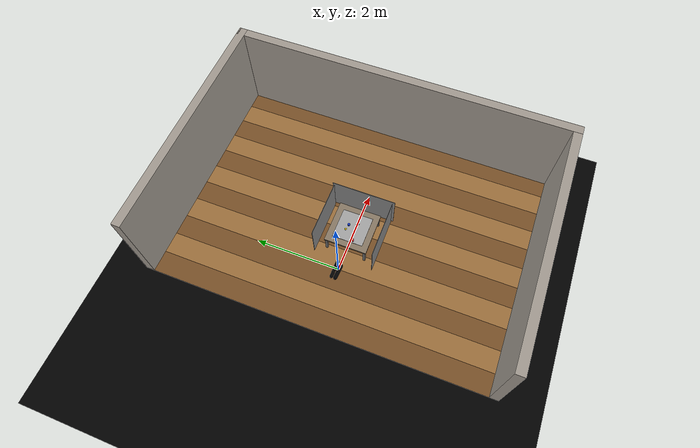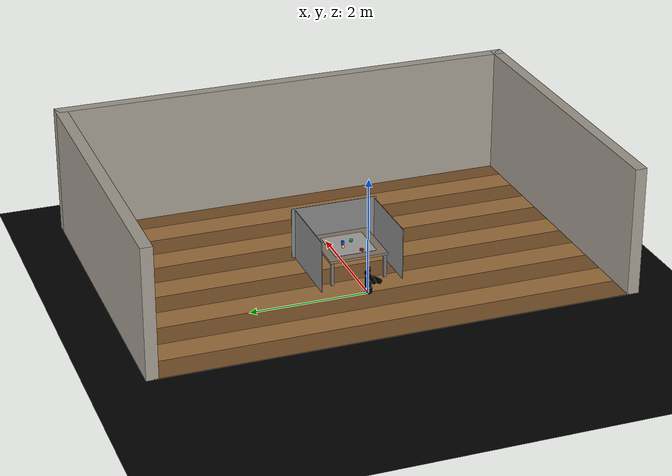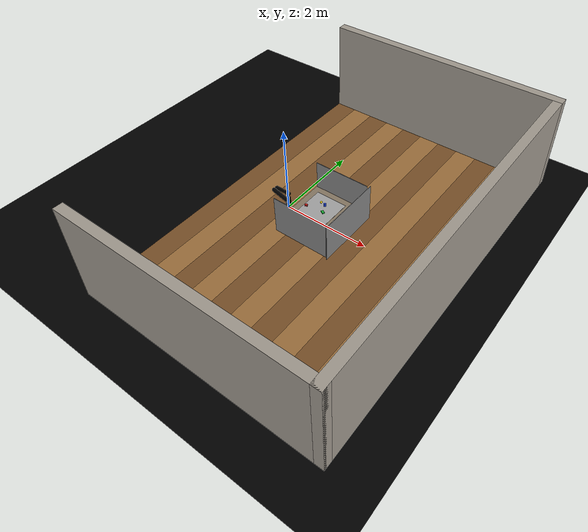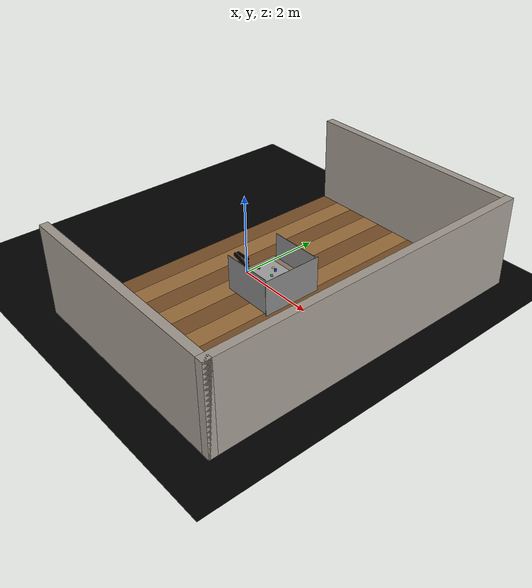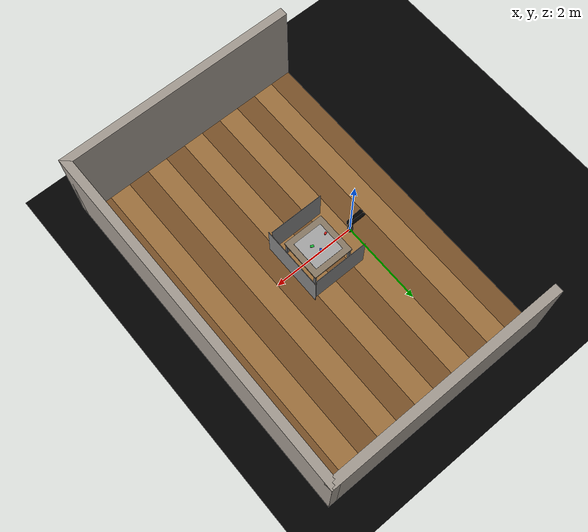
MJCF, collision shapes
<mujoco model="eMeetArm">
  <!-- eulerseq XYZ = intrinsic roll-pitch-yaw, matches URDF rpy convention -->
  <compiler meshdir="../../eMeetArm_models/meshes" eulerseq="XYZ" angle="radian"/>

  <option timestep="0.002" gravity="0 0 -9.81" integrator="implicitfast"/>

  <visual>
    <headlight diffuse="0.8 0.8 0.8" ambient="0.3 0.3 0.3" specular="0.0 0.0 0.0"/>
    <rgba haze="0.15 0.25 0.35 1"/>
  </visual>

  <asset>
    <mesh name="base_link" file="base_link.STL"/>
    <mesh name="Link1"     file="Link1.STL"/>
    <mesh name="Link2"     file="Link2.STL"/>
    <mesh name="Link3"     file="Link3.STL"/>
    <mesh name="Link4"     file="Link4.STL"/>
    <mesh name="Link5"     file="Link5.STL"/>
    <mesh name="Link6"     file="Link6.STL"/>
    <material name="arm_grey"   rgba="0.898 0.918 0.929 1"/>
    <material name="joint_grey" rgba="0.698 0.698 0.698 1"/>
  </asset>

  <default>
    <joint limited="true"/>
    <!-- visual: mesh rendering only, no physics collision -->
    <default class="visual">
      <geom contype="0" conaffinity="0" group="0"/>
    </default>
    <!-- robot_col: robot link collision shapes (contype=2), collide with world (conaffinity=1)
         but NOT with each other (world has conaffinity=2, robot has contype=2 → robot-robot: off) -->
    <default class="robot_col">
      <geom contype="2" conaffinity="1" group="3" rgba="0 0 0 0"/>
    </default>
    <!-- world_col: scene/object collision, collides with robot and other objects -->
    <default class="world_col">
      <geom contype="1" conaffinity="3" group="0"/>
    </default>
  </default>

  <worldbody>
    <!-- ── Lighting ────────────────────────────────────────────────────────── -->
    <light name="overhead" pos="0.75 0 3.0" dir="0 0 -1"
           diffuse="0.92 0.92 0.88" specular="0.3 0.3 0.3"/>
    <light name="side"     pos="1 1 1.5" dir="-1 -1 -1"
           diffuse="0.4 0.4 0.4"/>
    <light name="fill"     pos="-0.3 0.5 1.2"
           diffuse="0.55 0.55 0.60" specular="0.1 0.1 0.1"
           attenuation="0.3 0.1 0.01" cutoff="5"/>

    <!-- Ground collision plane (invisible) -->
    <geom name="ground_col" class="world_col" type="plane" size="5 5 0.1" rgba="0 0 0 0"/>

    <!-- ── Wood floor planks (alternating dark/light, visual only) ────────── -->
    <!-- 11 planks, 0.50×8.0m each, x=-1.25 to +3.75 -->
    <geom name="plank_d0" type="box" size="0.25 4.0 0.004"
          pos="-1.25 0 0.004" rgba="0.48 0.32 0.16 1" contype="0" conaffinity="0"/>
    <geom name="plank_l0" type="box" size="0.25 4.0 0.004"
          pos="-0.75 0 0.004" rgba="0.62 0.44 0.24 1" contype="0" conaffinity="0"/>
    <geom name="plank_d1" type="box" size="0.25 4.0 0.004"
          pos="-0.25 0 0.004" rgba="0.48 0.32 0.16 1" contype="0" conaffinity="0"/>
    <geom name="plank_l1" type="box" size="0.25 4.0 0.004"
          pos="0.25 0 0.004" rgba="0.62 0.44 0.24 1" contype="0" conaffinity="0"/>
    <geom name="plank_d2" type="box" size="0.25 4.0 0.004"
          pos="0.75 0 0.004" rgba="0.48 0.32 0.16 1" contype="0" conaffinity="0"/>
    <geom name="plank_l2" type="box" size="0.25 4.0 0.004"
          pos="1.25 0 0.004" rgba="0.62 0.44 0.24 1" contype="0" conaffinity="0"/>
    <geom name="plank_d3" type="box" size="0.25 4.0 0.004"
          pos="1.75 0 0.004" rgba="0.48 0.32 0.16 1" contype="0" conaffinity="0"/>
    <geom name="plank_l3" type="box" size="0.25 4.0 0.004"
          pos="2.25 0 0.004" rgba="0.62 0.44 0.24 1" contype="0" conaffinity="0"/>
    <geom name="plank_d4" type="box" size="0.25 4.0 0.004"
          pos="2.75 0 0.004" rgba="0.48 0.32 0.16 1" contype="0" conaffinity="0"/>
    <geom name="plank_l4" type="box" size="0.25 4.0 0.004"
          pos="3.25 0 0.004" rgba="0.62 0.44 0.24 1" contype="0" conaffinity="0"/>
    <geom name="plank_d5" type="box" size="0.25 4.0 0.004"
          pos="3.75 0 0.004" rgba="0.48 0.32 0.16 1" contype="0" conaffinity="0"/>

    <!-- ── Workbench (table) ──────────────────────────────────────────────── -->
    <body name="workbench" pos="0 0 0">
      <!-- Table surface: 1.00×1.00×0.04m, top at z=0.43 -->
      <geom name="table_top" class="world_col" type="box" size="0.50 0.50 0.02"
            pos="0.90 0 0.43" rgba="0.54 0.48 0.40 1"/>
      <geom name="leg_fl" class="world_col" type="box" size="0.025 0.025 0.205"
            pos="0.435 -0.455 0.205" rgba="0.45 0.45 0.45 1"/>
      <geom name="leg_fr" class="world_col" type="box" size="0.025 0.025 0.205"
            pos="0.435  0.455 0.205" rgba="0.45 0.45 0.45 1"/>
      <geom name="leg_bl" class="world_col" type="box" size="0.025 0.025 0.205"
            pos="1.365 -0.455 0.205" rgba="0.45 0.45 0.45 1"/>
      <geom name="leg_br" class="world_col" type="box" size="0.025 0.025 0.205"
            pos="1.365  0.455 0.205" rgba="0.45 0.45 0.45 1"/>
    </body>

    <!-- ── Inspection plate ───────────────────────────────────────────────── -->
    <geom name="plate" class="world_col" type="box" size="0.36 0.36 0.0025"
          pos="0.90 0 0.453" rgba="0.65 0.65 0.65 1"/>

    <!-- ── Cloth backdrops ────────────────────────────────────────────────── -->
    <geom name="cloth_back"  type="box" size="0.005 0.75 0.45"
          pos="1.60 0 0.45"    rgba="0.52 0.52 0.52 1" contype="0" conaffinity="0"/>
    <geom name="cloth_left"  type="box" size="0.65 0.005 0.45"
          pos="0.90 -0.70 0.45" rgba="0.52 0.52 0.52 1" contype="0" conaffinity="0"/>
    <geom name="cloth_right" type="box" size="0.65 0.005 0.45"
          pos="0.90  0.70 0.45" rgba="0.52 0.52 0.52 1" contype="0" conaffinity="0"/>

    <!-- ── Walls ──────────────────────────────────────────────────────────── -->
    <geom name="wall_back"  type="box" size="0.10 4.10 1.10"
          pos="4.00 0 1.10"    rgba="0.64 0.61 0.57 1" contype="0" conaffinity="0"/>
    <geom name="wall_left"  type="box" size="2.80 0.10 1.10"
          pos="1.30 -4.00 1.10" rgba="0.64 0.61 0.57 1" contype="0" conaffinity="0"/>
    <geom name="wall_right" type="box" size="2.80 0.10 1.10"
          pos="1.30  4.00 1.10" rgba="0.64 0.61 0.57 1" contype="0" conaffinity="0"/>

    <!-- ── Test objects (dynamic, can be manipulated) ─────────────────────── -->
    <body name="obj_red_box" pos="0.60 -0.12 0.47" euler="0 0 0.4">
      <inertial pos="0 0 0" mass="0.1" diaginertia="1e-4 1e-4 1e-4"/>
      <geom class="world_col" type="box" size="0.03 0.02 0.02" rgba="0.85 0.12 0.10 1"/>
      <freejoint/>
    </body>
    <body name="obj_blue_cyl" pos="0.92 0.10 0.485">
      <inertial pos="0 0 0" mass="0.15" diaginertia="1e-4 1e-4 5e-5"/>
      <geom class="world_col" type="cylinder" size="0.025 0.035" rgba="0.10 0.25 0.85 1"/>
      <freejoint/>
    </body>
    <body name="obj_green_box" pos="1.00 -0.08 0.4625" euler="0 0 -0.5">
      <inertial pos="0 0 0" mass="0.08" diaginertia="5e-5 5e-5 5e-5"/>
      <geom class="world_col" type="box" size="0.04 0.025 0.0125" rgba="0.10 0.72 0.22 1"/>
      <freejoint/>
    </body>
    <body name="obj_yellow_sphere" pos="0.80 0.13 0.475">
      <inertial pos="0 0 0" mass="0.05" diaginertia="2e-5 2e-5 2e-5"/>
      <geom class="world_col" type="sphere" size="0.025" rgba="0.95 0.82 0.05 1"/>
      <freejoint/>
    </body>

    <!-- base_link: fixed to world (no joint) -->
    <body name="base_link" pos="0 0 0">
      <inertial pos="-1.265e-05 -1.574e-05 0.04528" mass="2.9887"
                fullinertia="0.013686 0.011278 0.022318 6.69e-07 -3.086e-07 -2.269e-07"/>
      <geom class="visual" type="mesh" mesh="base_link" material="arm_grey"/>
      <geom class="robot_col" type="cylinder" size="0.065 0.054" pos="0 0 0.054"/>

      <!-- Link1: Joint1 — Z-axis rotation, base rotation -->
      <body name="Link1" pos="0 0 0.1078" euler="0 0 0">
        <inertial pos="-7.439e-05 -0.00743 0.12877" mass="2.3582"
                  fullinertia="0.003838 0.004658 0.002214 7.014e-07 -3.092e-06 -5.300e-04"/>
        <joint name="Joint1" type="hinge" axis="0 0 1" range="-3.1 3.1" damping="1.0"/>
        <geom class="visual" type="mesh" mesh="Link1" material="arm_grey"/>
        <geom class="robot_col" type="capsule" size="0.055" fromto="0 0 0  0 0 0.15"/>

        <!-- Link2: Joint2 — shoulder pitch -->
        <body name="Link2" pos="0 -0.0625 0.1502" euler="1.5708 -0.30769 -3.1416">
          <inertial pos="0.26233 -2.301e-05 0.02928" mass="1.2359"
                    fullinertia="5.211e-04 0.008365 0.008513 1.665e-07 1.289e-05 -2.828e-07"/>
          <joint name="Joint2" type="hinge" axis="0 0 1" range="-0.8 3.14" damping="5.0"/>
          <geom class="visual" type="mesh" mesh="Link2" material="arm_grey"/>
          <geom class="robot_col" type="capsule" size="0.045" fromto="0 0 0  0.35 0 0"/>

          <!-- Link3: Joint3 — elbow -->
          <body name="Link3" pos="0.35 0 0.089" euler="0 0 2.8339">
            <inertial pos="0.25099 0.00809 -0.02224" mass="0.7526"
                      fullinertia="4.253e-04 0.003230 0.003197 -5.617e-05 -1.500e-06 -5.251e-07"/>
            <joint name="Joint3" type="hinge" axis="0 0 1" range="-3.14 0.05" damping="3.0"/>
            <geom class="visual" type="mesh" mesh="Link3" material="arm_grey"/>
            <geom class="robot_col" type="capsule" size="0.038" fromto="0 0 0  0.34 0 0"/>

            <!-- Link4: Joint4 — wrist roll -->
            <body name="Link4" pos="0.339 -0.024975 -0.04" euler="1.5708 0 0">
              <inertial pos="-0.01013 -9.437e-06 0.01831" mass="0.09684"
                        fullinertia="3.907e-05 4.727e-05 5.037e-05 -7.031e-09 1.317e-05 -4.242e-09"/>
              <joint name="Joint4" type="hinge" axis="0 0 -1" range="-3.1 3.1" damping="0.5"/>
              <geom class="visual" type="mesh" mesh="Link4" material="joint_grey"/>
              <geom class="robot_col" type="capsule" size="0.030" fromto="0 0 0  0 0 0.05"/>

              <!-- Link5: Joint5 — wrist pitch -->
              <body name="Link5" pos="-0.022739 0 0.048353" euler="-1.5708 0 -1.5708">
                <inertial pos="0.001264 1.062e-04 0.02105" mass="0.04532"
                          fullinertia="9.660e-06 1.308e-05 8.920e-06 4.202e-08 1.664e-06 -8.577e-08"/>
                <joint name="Joint5" type="hinge" axis="0 0 1" range="-0.7854 0.7854" damping="0.5"/>
                <geom class="visual" type="mesh" mesh="Link5" material="joint_grey"/>
                <geom class="robot_col" type="sphere" size="0.028" pos="0 0 0.02"/>

                <!-- Link6: Joint6 — wrist yaw -->
                <body name="Link6" pos="0 0 0.03484" euler="3.1416 -1.5708 0">
                  <inertial pos="-3.918e-04 -5.109e-05 8.727e-05" mass="0.05505"
                            fullinertia="1.975e-05 1.676e-05 1.076e-05 2.973e-08 -3.399e-08 -1.342e-07"/>
                  <joint name="Joint6" type="hinge" axis="0 0 -1" range="-1.5 0.5" damping="0.5"/>
                  <geom class="visual" type="mesh" mesh="Link6" material="joint_grey"/>
                  <geom class="robot_col" type="sphere" size="0.025" pos="0 0 0"/>

                  <!-- tool0: end-effector frame (fixed, no joint) -->
                  <body name="tool0" pos="0 0 0">
                    <site name="ee_site" pos="0 0 0" size="0.01" rgba="1 0 0 0.5"/>
                    <body name="camera_optical_frame" pos="0 0 0"
                          euler="0 -1.5708 3.1416">
                      <camera name="ee_cam" pos="0 0 0.04"
                              fovy="70.9" resolution="640 480"
                              xyaxes="1 0 0  0 -1 0"/>
                    </body>
                  </body>
                </body>
              </body>
            </body>
          </body>
        </body>
      </body>
    </body>
  </worldbody>

  <actuator>
    <position name="act_Joint1" joint="Joint1" kp="500" kv="60"/>
    <position name="act_Joint2" joint="Joint2" kp="800" kv="100"/>
    <position name="act_Joint3" joint="Joint3" kp="300" kv="40"/>
    <position name="act_Joint4" joint="Joint4" kp="80"  kv="12"/>
    <position name="act_Joint5" joint="Joint5" kp="50"  kv="8"/>
    <position name="act_Joint6" joint="Joint6" kp="50"  kv="8"/>
  </actuator>

</mujoco>
